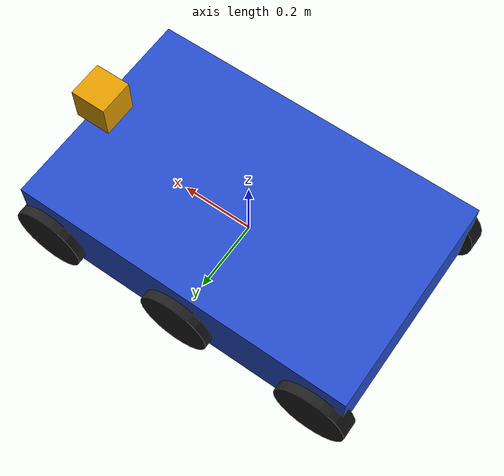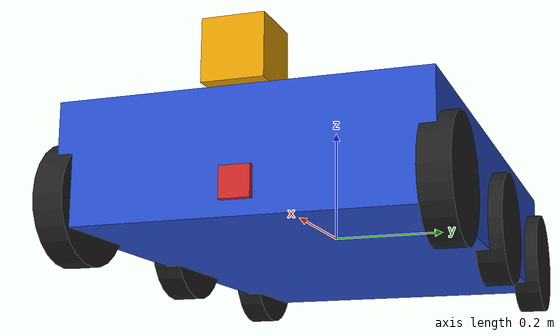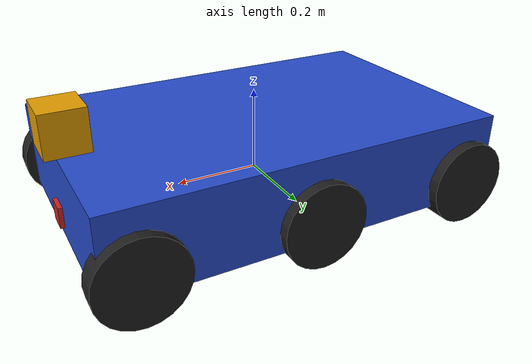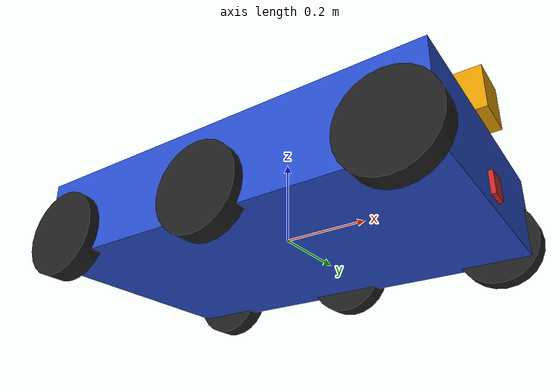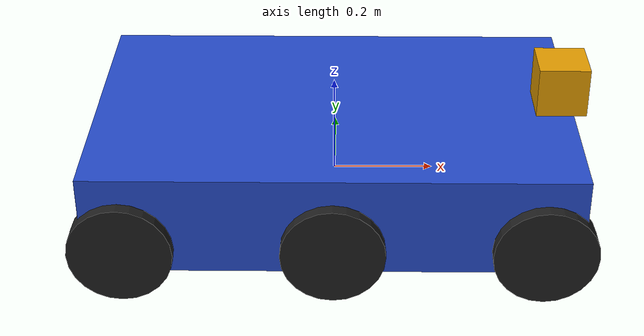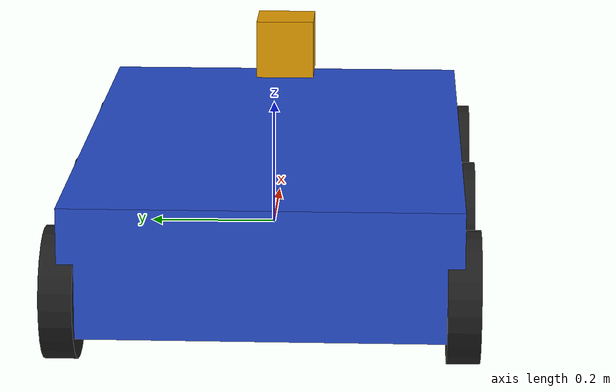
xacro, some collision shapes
<?xml version='1.0'?>
<robot name="rover" xmlns:xacro="http//www.ros.org/wiki/xacro">
    <xacro:property name="robot_name" value="rover" />
	<xacro:property name="robot_chassis_mass" value="15"/>
	<xacro:property name="robot_chassis_length" value="0.2"/>
	<xacro:property name="robot_chassis_radius" value="0.25"/>
	<xacro:property name="robot_caster_wheel_radius" value="0.05"/>
	<xacro:property name="robot_caster_wheel_radius_collision" value="0.0499"/>

    <xacro:property name="robot_wheel_mass" value="5"/>
	<xacro:property name="robot_wheel_length" value="0.05"/>
	<xacro:property name="robot_wheel_radius" value="0.1"/>

	<xacro:property name="camera_mass" value="0.1"/>
	<xacro:property name="hokoyu_mass" value="1e-5"/>

    <link name="chassis">
        <pose> 0 0 0.1 0 0 0</pose>
        <inertial>
            <mass value="${robot_chassis_mass}"/>
        <origin xyz="0.0 0 0" rpy="0 0 0"/>

        <inertia
                ixx="0.147116667" ixy="0" ixz="0"
                iyy="0.334951167" iyz="0"
                izz="0.3978345"
                />
        </inertial>

        <collision name="collision">
                <origin xyz="0 0 0.05" rpy=" 0 0 0"/>
                <geometry>
                    <box size="0.95 0.6 0.2"/>
                </geometry>
        </collision>

        <visual name="chassis_visual">
                <origin xyz="0 0 0.05" rpy=" 0 0 0"/>
                <geometry>
                    <box size="0.95 0.6 0.2"/>
                </geometry>

            </visual>

    </link>

<!-- Right Wheel Back -->
	<link name="right_wheel_back">
		<inertial>
			<mass value="${robot_wheel_mass}"/>
			<origin xyz="0 0 0" rpy="0 1.5707 1.5707"/>
			<inertia
				ixx="0.1" ixy="0.0" ixz="0.0"
				iyy="0.1" iyz="0.0"
				izz="0.1"
			/>
		</inertial>

		<visual>
			<origin xyz="0 0 0" rpy="0 1.5707 1.5707"/>
			<geometry>
				<cylinder radius="${robot_wheel_radius}" length="${robot_wheel_length}"/>
			</geometry>
		</visual>

		<collision>
			<origin xyz="0 0 0" rpy="0 1.5707 1.5707"/>
			<geometry>
				<cylinder radius="${robot_wheel_radius}" length="${robot_wheel_length}"/>
			</geometry>
		</collision>

    </link>

    <!-- Right Wheel Front-->
	<link name="right_wheel_front">
		<inertial>
			<mass value="${robot_wheel_mass}"/>
			<origin xyz="0 0 0" rpy="0 1.5707 1.5707"/>
			<inertia
				ixx="0.1" ixy="0.0" ixz="0.0"
				iyy="0.1" iyz="0.0"
				izz="0.1"
			/>
		</inertial>

		<visual>
			<origin xyz="0 0 0" rpy="0 1.5707 1.5707"/>
			<geometry>
				<cylinder radius="${robot_wheel_radius}" length="${robot_wheel_length}"/>
			</geometry>
		</visual>

		<collision>
			<origin xyz="0 0 0" rpy="0 1.5707 1.5707"/>
			<geometry>
				<cylinder radius="${robot_wheel_radius}" length="${robot_wheel_length}"/>
			</geometry>
		</collision>

	</link>

    <!-- Right Wheel Middle-->
	<link name="right_wheel_middle">
		<inertial>
			<mass value="${robot_wheel_mass}"/>
			<origin xyz="0 0 0" rpy="0 1.5707 1.5707"/>
			<inertia
				ixx="0.1" ixy="0.0" ixz="0.0"
				iyy="0.1" iyz="0.0"
				izz="0.1"
			/>
		</inertial>

		<visual>
			<origin xyz="0 0 0" rpy="0 1.5707 1.5707"/>
			<geometry>
				<cylinder radius="${robot_wheel_radius}" length="${robot_wheel_length}"/>
			</geometry>
		</visual>

		<collision>
			<origin xyz="0 0 0" rpy="0 1.5707 1.5707"/>
			<geometry>
				<cylinder radius="${robot_wheel_radius}" length="${robot_wheel_length}"/>
			</geometry>
		</collision>

	</link>

	<!-- Left wheel Back-->
	<link name="left_wheel_back">
		<inertial>
			<mass value="${robot_wheel_mass}"/>
			<origin xyz="0 0 0" rpy="0 1.5707 1.5707"/>
			<inertia
				ixx="0.1" ixy="0.0" ixz="0.0"
				iyy="0.1" iyz="0.0"
				izz="0.1"
			/>
		</inertial>

		<visual>
			<origin xyz="0 0 0" rpy="0 1.5707 1.5707"/>
			<geometry>
				<cylinder radius="${robot_wheel_radius}" length="${robot_wheel_length}"/>
			</geometry>
		</visual>

		<collision>
			<origin xyz="0 0 0" rpy="0 1.5707 1.5707"/>
			<geometry>
				<cylinder radius="${robot_wheel_radius}" length="${robot_wheel_length}"/>
			</geometry>
		</collision>

	</link>

	<!-- Left wheel Front-->
	<link name="left_wheel_front">
		<inertial>
			<mass value="${robot_wheel_mass}"/>
			<origin xyz="0 0 0" rpy="0 1.5707 1.5707"/>
			<inertia
				ixx="0.1" ixy="0.0" ixz="0.0"
				iyy="0.1" iyz="0.0"
				izz="0.1"
			/>
		</inertial>

		<visual>
			<origin xyz="0 0 0" rpy="0 1.5707 1.5707"/>
			<geometry>
				<cylinder radius="${robot_wheel_radius}" length="${robot_wheel_length}"/>
			</geometry>
		</visual>

		<collision>
			<origin xyz="0 0 0" rpy="0 1.5707 1.5707"/>
			<geometry>
				<cylinder radius="${robot_wheel_radius}" length="${robot_wheel_length}"/>
			</geometry>
		</collision>

	</link>

    <!-- Left wheel Front-->
	<link name="left_wheel_middle">
		<inertial>
			<mass value="${robot_wheel_mass}"/>
			<origin xyz="0 0 0" rpy="0 1.5707 1.5707"/>
			<inertia
				ixx="0.1" ixy="0.0" ixz="0.0"
				iyy="0.1" iyz="0.0"
				izz="0.1"
			/>
		</inertial>

		<visual>
			<origin xyz="0 0 0" rpy="0 1.5707 1.5707"/>
			<geometry>
				<cylinder radius="${robot_wheel_radius}" length="${robot_wheel_length}"/>
			</geometry>
		</visual>

		<collision>
			<origin xyz="0 0 0" rpy="0 1.5707 1.5707"/>
			<geometry>
				<cylinder radius="${robot_wheel_radius}" length="${robot_wheel_length}"/>
			</geometry>
		</collision>

	</link>

	<!-- Camera -->
	<link name="camera">
		<inertial>
			<mass value="${camera_mass}"/>
			<origin xyz="0 0 0" rpy="0 0 0"/>
			<inertia
		        ixx="1e-6" ixy="0.0" ixz="0.0"
		        iyy="1e-6" iyz="0.0"
		        izz="1e-6"
		      />
		</inertial>

		<visual>
			<origin xyz="0 0 0" rpy="0 0 0"/>
			<geometry>
				<box size="0.05 0.05 0.05"/>
			</geometry>
		</visual>

		<collision>
			<origin xyz="0 0 0" rpy="0 0 0"/>
			<geometry>
				<box size="0.05 0.05 0.05"/>
			</geometry>
		</collision>
	</link>

    <!-- Hokuyo Lidar -->
	<link name="hokuyo">
		<inertial>
			<mass value="${hokoyu_mass}"/>
			<origin xyz="0 0 0" rpy="0 0 0"/>

			<inertia
		        ixx="1e-6" ixy="0.0" ixz="0.0"
		        iyy="1e-6" iyz="0.0"
		        izz="1e-6"
		      />
		</inertial>

		<visual>
			<origin xyz="0 0 0" rpy="0 0 0"/>
			<geometry>
				<mesh filename="package://rover_description/meshes/hokuyo.dae"/>
			</geometry>
		</visual>

		<collision>
			<origin xyz="0 0 0" rpy="0 0 0"/>
			<geometry>
				<box size="0.1 0.1 0.1"/>
			</geometry>
		</collision>
	</link>

    <!-- Project center to the ground -->
	<link name="robot_footprint"></link>

	<!-- Define Joints -->

	<!-- Right Wheel Joint Back-->
	<joint type="continuous" name="right_wheel_hinge_back">
	    <origin xyz="-0.4 -0.30 0" rpy="0 0 0" />
	    <parent link="chassis"/>
	    <child link="right_wheel_back" />
	    <axis xyz="0 1 0" rpy="0 0 0" />
	    <limit effort="10000" velocity="1000" />
	    <dynamics damping="1.0" friction="1.0" />
	</joint>

	<!-- Right Wheel Joint Front-->
	<joint type="continuous" name="right_wheel_hinge_front">
	    <origin xyz="0.4 -0.30 0" rpy="0 0 0" />
	    <parent link="chassis"/>
	    <child link="right_wheel_front" />
	    <axis xyz="0 1 0" rpy="0 0 0" />
	    <limit effort="10000" velocity="1000" />
	    <dynamics damping="1.0" friction="1.0" />
	</joint>

    <!-- Right Wheel Joint Middle-->
	<joint type="continuous" name="right_wheel_hinge_middle">
	    <origin xyz="0 -0.30 0" rpy="0 0 0" />
	    <parent link="chassis"/>
	    <child link="right_wheel_middle" />
	    <axis xyz="0 1 0" rpy="0 0 0" />
	    <limit effort="10000" velocity="1000" />
	    <dynamics damping="1.0" friction="1.0" />
	</joint>

	<!-- Left Wheel Joint Back-->
	<joint type="continuous" name="left_wheel_hinge_back">
	    <origin xyz="-0.4 0.30 0" rpy="0 0 0" />
	    <parent link="chassis"/>
	    <child link="left_wheel_back" />
	    <axis xyz="0 1 0" rpy="0 0 0" />
	    <limit effort="10000" velocity="1000" />
	    <dynamics damping="1.0" friction="1.0" />
	</joint>

	<!-- Left Wheel Joint Front-->
	<joint type="continuous" name="left_wheel_hinge_front">
	    <origin xyz="0.4 0.30 0" rpy="0 0 0" />
	    <parent link="chassis"/>
	    <child link="left_wheel_front" />
	    <axis xyz="0 1 0" rpy="0 0 0" />
	    <limit effort="10000" velocity="1000" />
	    <dynamics damping="1.0" friction="1.0" />
	</joint>

    <!-- Left Wheel Joint Front-->
	<joint type="continuous" name="left_wheel_hinge_middle">
	    <origin xyz="0 0.30 0" rpy="0 0 0" />
	    <parent link="chassis"/>
	    <child link="left_wheel_middle" />
	    <axis xyz="0 1 0" rpy="0 0 0" />
	    <limit effort="10000" velocity="1000" />
	    <dynamics damping="1.0" friction="1.0" />
	</joint>

	<!-- Camera Joint -->
	<joint name="camera_joint" type="fixed">
		<origin xyz="0.46 0 0" rpy="0 0 0" />
		<parent link="chassis"/>
		<child link="camera" />
		<axis xyz="0 1 0"/>
	</joint>

	<!-- Hokoyu Joint -->
	<joint name="hokuyo_joint" type="fixed">
	    <origin xyz="0.45 0 0.2" rpy="0 0 0" />
	    <parent link="chassis"/>
	    <child link="hokuyo" />
	    <axis xyz="0 1 0"/>
	</joint>

	<joint name="robot_footprint_joint" type="fixed">
		<origin xyz="0 0 0" rpy="0 0 0" />
		<parent link="robot_footprint"/>
		<child link="chassis" />
	</joint>

	<!-- Color of bot -->
	<gazebo reference="left_wheel_front">
		<material>Gazebo/Black</material>
		<kp>1000000.0</kp> <!-- kp and kd for rubber -->
		<kd>100.0</kd>
		<mu1>1.0</mu1>
		<mu2>1.0</mu2>
		<maxVel>1.0</maxVel>
		<minDepth>0.00</minDepth>
	</gazebo>

	<gazebo reference="left_wheel_back">
		<material>Gazebo/Black</material>
		<kp>1000000.0</kp> <!-- kp and kd for rubber -->
		<kd>100.0</kd>
		<mu1>1.0</mu1>
		<mu2>1.0</mu2>
		<maxVel>1.0</maxVel>
		<minDepth>0.00</minDepth>
	</gazebo>

	<gazebo reference="right_wheel_front">
		<material>Gazebo/Black</material>
		<kp>1000000.0</kp> <!-- kp and kd for rubber -->
		<kd>100.0</kd>
		<mu1>1.0</mu1>
		<mu2>1.0</mu2>
		<maxVel>1.0</maxVel>
		<minDepth>0.00</minDepth>
	</gazebo>
	<gazebo reference="right_wheel_back">
		<material>Gazebo/Black</material>
		<kp>1000000.0</kp> <!-- kp and kd for rubber -->
		<kd>100.0</kd>
		<mu1>1.0</mu1>
		<mu2>1.0</mu2>
		<maxVel>1.0</maxVel>
		<minDepth>0.00</minDepth>
	</gazebo>

    <gazebo reference="right_wheel_middle">
		<material>Gazebo/Black</material>
		<kp>1000000.0</kp> <!-- kp and kd for rubber -->
		<kd>100.0</kd>
		<mu1>1.0</mu1>
		<mu2>1.0</mu2>
		<maxVel>1.0</maxVel>
		<minDepth>0.00</minDepth>
	</gazebo>

    <gazebo reference="left_wheel_middle">
		<material>Gazebo/Black</material>
		<kp>1000000.0</kp> <!-- kp and kd for rubber -->
		<kd>100.0</kd>
		<mu1>1.0</mu1>
		<mu2>1.0</mu2>
		<maxVel>1.0</maxVel>
		<minDepth>0.00</minDepth>
	</gazebo>

	<gazebo reference="camera">
		<material>Gazebo/Red</material>
	</gazebo>

	<gazebo reference="chassis">
		<material>Gazebo/Blue</material>
	</gazebo>

	<!-- Motor, Camera and Lidar Simulation -->
	<xacro:include filename="$(find rover_description)/urdf/rover.gazebo" />

</robot>
